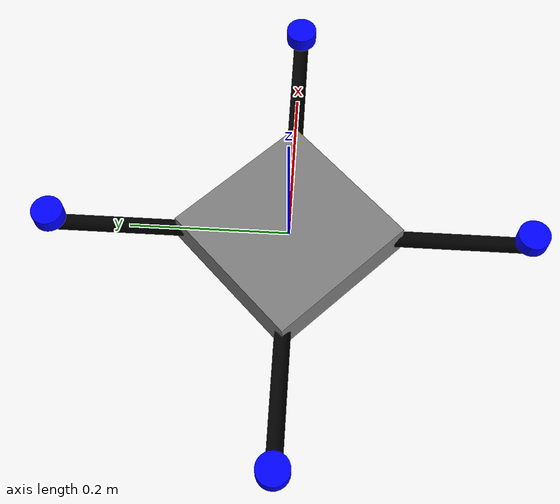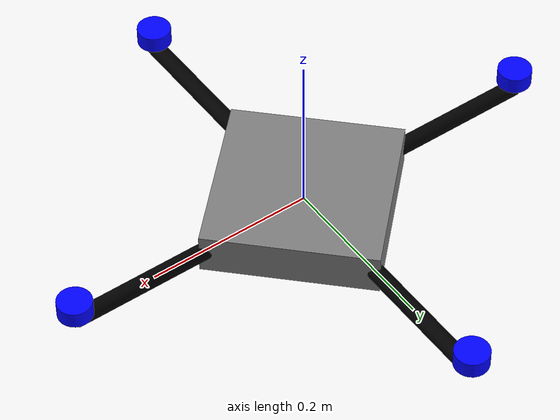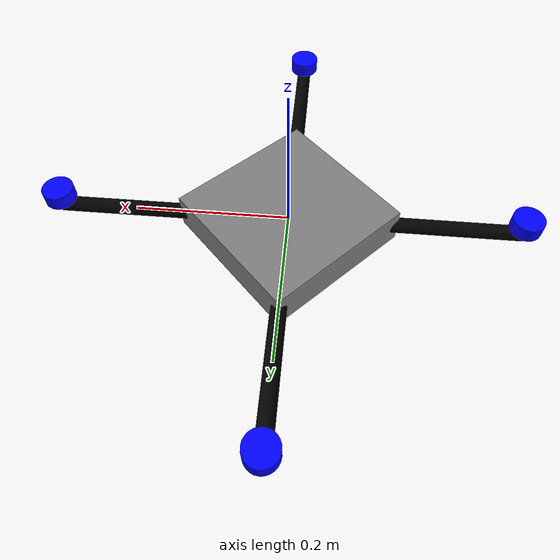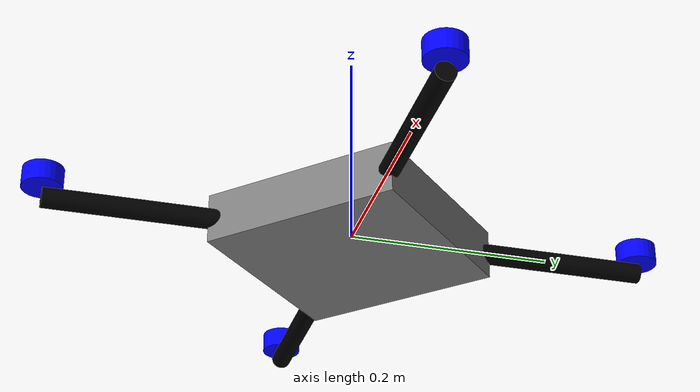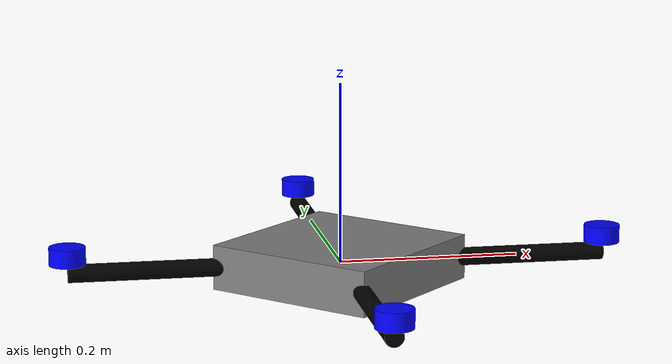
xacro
<?xml version="1.0"?>
<robot name="my_quadracopter" xmlns:xacro="http://ros.org/wiki/xacro">

  <!-- Materiales -->
  <material name="gray"><color rgba="0.5 0.5 0.5 1.0"/></material>
  <material name="black"><color rgba="0.0 0.0 0.0 1.0"/></material>
  <material name="blue"><color rgba="0.0 0.0 1.0 1.0"/></material>

  <!-- Cuerpo central -->
  <link name="base_link">
    <visual>
      <origin xyz="0 0 0" rpy="0 0 0.7853"/>
      <geometry><box size="0.2 0.2 0.05"/></geometry>
      <material name="gray"/>
    </visual>
    <collision>
      <origin xyz="0 0 0" rpy="0 0 0"/>
      <geometry><box size="0.2 0.2 0.05"/></geometry>
    </collision>
    <inertial>
      <mass value="1.0"/>
      <origin xyz="0 0 0" rpy="0 0 0"/>
      <inertia ixx="0.001" iyy="0.001" izz="0.001" ixy="0" ixz="0" iyz="0"/>
    </inertial>
  </link>

  <!-- Macro de brazo con motor -->
  <xacro:macro name="arm_with_motor" params="name parent dx dy yaw">
    <xacro:property name="arm_length" value="0.2"/>
    <xacro:property name="ox" value="${dx * 0.5}"/>
    <xacro:property name="oy" value="${dy * 0.5}"/>
    <xacro:property name="mx" value="${dx}"/>        <!-- 🔵 desplazamiento respecto al centro del brazo -->
    <xacro:property name="my" value="${dy}"/>

    <!-- Brazo -->
    <link name="${name}_arm">
      <visual>
        <origin xyz="${ox} ${oy} 0" rpy="1.5708 0 ${yaw}"/>
        <geometry>
          <cylinder length="${arm_length}" radius="0.01"/>
        </geometry>
        <material name="black"/>
      </visual>
      <collision>
        <origin xyz="${ox} ${oy} 0" rpy="1.5708 0 ${yaw}"/>
        <geometry>
          <cylinder length="${arm_length}" radius="0.01"/>
        </geometry>
      </collision>
      <inertial>
        <mass value="0.05"/>
        <origin xyz="0 0 0" rpy="0 0 0"/>
        <inertia ixx="1e-5" iyy="1e-5" izz="1e-5" ixy="0" ixz="0" iyz="0"/>
      </inertial>
    </link>

    <joint name="joint_${name}_arm" type="fixed">
      <parent link="${parent}"/>
      <child link="${name}_arm"/>
      <origin xyz="${ox} ${oy} 0" rpy="0 0 0"/>
    </joint>

    <!-- Motor -->
    <link name="${name}_motor">
      <visual>
        <origin xyz="0 0 0" rpy="0 0 0"/>
        <geometry>
          <cylinder length="0.02" radius="0.02"/>
        </geometry>
        <material name="blue"/>
      </visual>
      <collision>
        <origin xyz="0 0 0" rpy="0 0 0"/>
        <geometry>
          <cylinder length="0.02" radius="0.02"/>
        </geometry>
      </collision>
      <inertial>
        <mass value="0.05"/>
        <origin xyz="0 0 0" rpy="0 0 0"/>
        <inertia ixx="1e-5" iyy="1e-5" izz="1e-5" ixy="0" ixz="0" iyz="0"/>
      </inertial>
    </link>

    <joint name="joint_${name}_motor" type="continuous">
      <parent link="${name}_arm"/>
      <child link="${name}_motor"/>
      <origin xyz="${mx} ${my} 0.02" rpy="0 0 0"/>
      <axis xyz="0 0 1"/>
      <dynamics damping="0.01" friction="1.5"/>
    </joint>

  </xacro:macro>

  <!-- Cuatro brazos con motores -->
  <xacro:arm_with_motor name="front_left"   parent="base_link" dx="-0.2" dy="0" yaw="1.5708"/>
  <xacro:arm_with_motor name="front_right"  parent="base_link" dx="0" dy="0.2" yaw="0"/>
  <xacro:arm_with_motor name="back_left"   parent="base_link" dx="0" dy="-0.2" yaw="0"/>
  <xacro:arm_with_motor name="back_right"  parent="base_link" dx="0.2" dy="0" yaw="1.5708"/>

  <gazebo>
    <plugin name="wrenches_plugin" filename="libwrenches_plugin.so">
      <link_name_motor1>front_left_motor</link_name_motor1>
      <topic_motor1>/drone/front_left_motor</topic_motor1>

      <link_name_motor2>front_right_motor</link_name_motor2>    <!-- link_name_motor2 es el texto que está escrito entre "" en el plugin-->
      <topic_motor2>/drone/front_right_motor</topic_motor2>     <!-- topic1 es el texto que está escrito entre "" en el plugin-->

      <link_name_motor3>back_left_motor</link_name_motor3>
      <topic_motor3>/drone/back_left_motor</topic_motor3>

      <link_name_motor4>back_right_motor</link_name_motor4>
      <topic_motor4>/drone/back_right_motor</topic_motor4>
    </plugin>

    <plugin name="imu_plugin" filename="libimu_plugin.so">
      <link_name_imu>base_link</link_name_imu>
      <frame_id_imu>base_link</frame_id_imu>
      <topic_imu>/imu/data</topic_imu>
      <update_rate_imu>200</update_rate_imu>           <!-- pick any rate; 0 = every sim tick -->
      <remove_gravity_imu>false</remove_gravity_imu>
      <ros>
        <namespace>/drone</namespace>          <!-- optional -->
      </ros>
    </plugin>
  </gazebo>

</robot>
